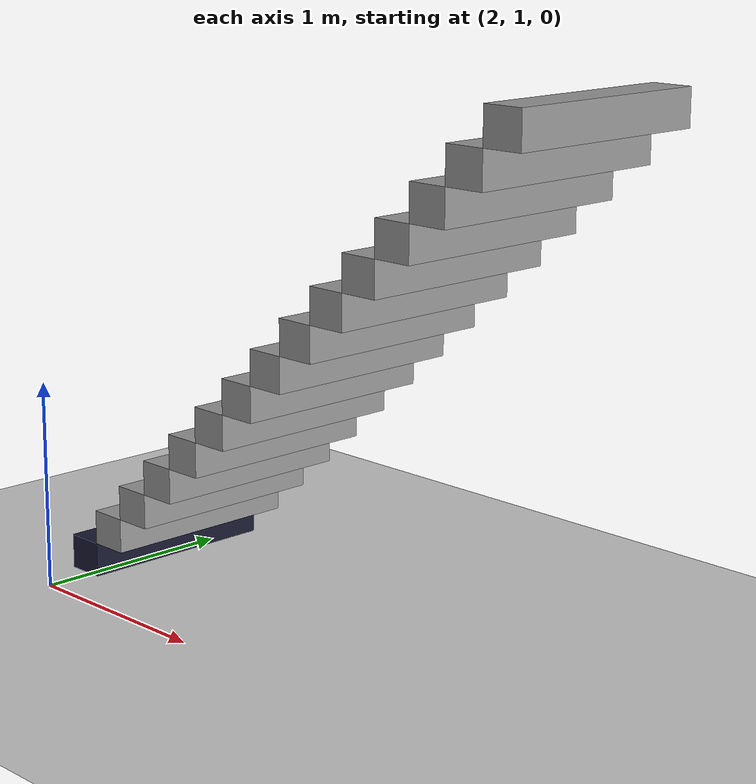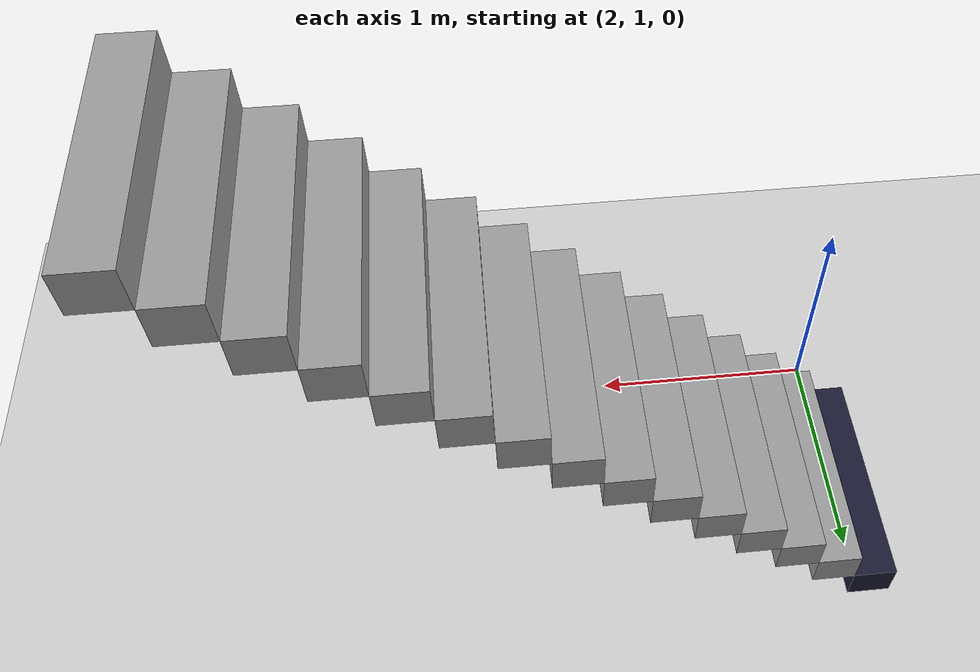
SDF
<sdf version="1.6">
 <world name="default">
  <model name="ground_plane">
   <static>1</static>
   <link name="link">
    <collision name="collision">
     <geometry><plane><normal>0 0 1</normal><size>100 100</size></plane></geometry>
     <surface><friction><ode><mu>100</mu><mu2>50</mu2></ode></friction></surface>
    </collision>
    <visual name="visual">
     <cast_shadows>0</cast_shadows>
     <geometry><plane><normal>0 0 1</normal><size>100 100</size></plane></geometry>
     <material>
      <script><uri>file://media/materials/scripts/gazebo.material</uri><name>Gazebo/Grey</name></script>
     </material>
    </visual>
   </link>
  </model>
  <model name="project1_building">
   <link name="Stairs_7">
    <inertial>
     <mass>1</mass>
     <inertia><ixx>1</ixx><ixy>0</ixy><ixz>0</ixz><iyy>1</iyy><iyz>0</iyz><izz>1</izz></inertia>
    </inertial>
    <visual name="Stairs_7_Visual_0">
     <material>
      <ambient>0.1 0.1 0.1 1</ambient>
      <diffuse>0.1 0.1 0.2 1</diffuse>
      <specular>0 0 0 1</specular>
      <emissive>0 0 0 1</emissive>
      <shader type="pixel"><normal_map>__default__</normal_map></shader>
      <script><name>ModelPreview_1::Stairs_7::Stairs_7_Visual_0_MATERIAL_</name><uri>__default__</uri></script>
     </material>
     <pose>2.81269 2.1369 0.083333 0 -0 1.5708</pose>
     <geometry><box><size>1 0.19 0.166667</size></box></geometry>
     <material>
      <script><uri>file://media/materials/scripts/gazebo.material</uri><name>Gazebo/Grey</name></script>
      <ambient>1 1 1 1</ambient>
     </material>
     <meta><layer>0</layer></meta>
    </visual>
    <visual name="Stairs_7_Visual_1">
     <pose>3.00269 2.1369 0.25 0 -0 1.5708</pose>
     <geometry><box><size>1 0.19 0.166667</size></box></geometry>
     <material>
      <script><uri>file://media/materials/scripts/gazebo.material</uri><name>Gazebo/Grey</name></script>
      <ambient>1 1 1 1</ambient>
      <shader type="pixel"><normal_map>__default__</normal_map></shader>
      <diffuse>0.7 0.7 0.7 1</diffuse>
      <specular>0.01 0.01 0.01 1</specular>
      <emissive>0 0 0 1</emissive>
     </material>
     <meta><layer>0</layer></meta>
    </visual>
    <visual name="Stairs_7_Visual_2">
     <pose>3.19269 2.1369 0.416667 0 -0 1.5708</pose>
     <geometry><box><size>1 0.19 0.166667</size></box></geometry>
     <material>
      <script><uri>file://media/materials/scripts/gazebo.material</uri><name>Gazebo/Grey</name></script>
      <ambient>1 1 1 1</ambient>
      <shader type="pixel"><normal_map>__default__</normal_map></shader>
      <diffuse>0.7 0.7 0.7 1</diffuse>
      <specular>0.01 0.01 0.01 1</specular>
      <emissive>0 0 0 1</emissive>
     </material>
     <meta><layer>0</layer></meta>
    </visual>
    <visual name="Stairs_7_Visual_3">
     <pose>3.38269 2.1369 0.583333 0 -0 1.5708</pose>
     <geometry><box><size>1 0.19 0.166667</size></box></geometry>
     <material>
      <script><uri>file://media/materials/scripts/gazebo.material</uri><name>Gazebo/Grey</name></script>
      <ambient>1 1 1 1</ambient>
      <shader type="pixel"><normal_map>__default__</normal_map></shader>
      <diffuse>0.7 0.7 0.7 1</diffuse>
      <specular>0.01 0.01 0.01 1</specular>
      <emissive>0 0 0 1</emissive>
     </material>
     <meta><layer>0</layer></meta>
    </visual>
    <visual name="Stairs_7_Visual_4">
     <pose>3.57269 2.1369 0.75 0 -0 1.5708</pose>
     <geometry><box><size>1 0.19 0.166667</size></box></geometry>
     <material>
      <script><uri>file://media/materials/scripts/gazebo.material</uri><name>Gazebo/Grey</name></script>
      <ambient>1 1 1 1</ambient>
      <shader type="pixel"><normal_map>__default__</normal_map></shader>
      <diffuse>0.7 0.7 0.7 1</diffuse>
      <specular>0.01 0.01 0.01 1</specular>
      <emissive>0 0 0 1</emissive>
     </material>
     <meta><layer>0</layer></meta>
    </visual>
    <visual name="Stairs_7_Visual_5">
     <pose>3.76269 2.1369 0.916667 0 -0 1.5708</pose>
     <geometry><box><size>1 0.19 0.166667</size></box></geometry>
     <material>
      <script><uri>file://media/materials/scripts/gazebo.material</uri><name>Gazebo/Grey</name></script>
      <ambient>1 1 1 1</ambient>
      <shader type="pixel"><normal_map>__default__</normal_map></shader>
      <diffuse>0.7 0.7 0.7 1</diffuse>
      <specular>0.01 0.01 0.01 1</specular>
      <emissive>0 0 0 1</emissive>
     </material>
     <meta><layer>0</layer></meta>
    </visual>
    <visual name="Stairs_7_Visual_6">
     <pose>3.95269 2.1369 1.08333 0 -0 1.5708</pose>
     <geometry><box><size>1 0.19 0.166667</size></box></geometry>
     <material>
      <script><uri>file://media/materials/scripts/gazebo.material</uri><name>Gazebo/Grey</name></script>
      <ambient>1 1 1 1</ambient>
      <shader type="pixel"><normal_map>__default__</normal_map></shader>
      <diffuse>0.7 0.7 0.7 1</diffuse>
      <specular>0.01 0.01 0.01 1</specular>
      <emissive>0 0 0 1</emissive>
     </material>
     <meta><layer>0</layer></meta>
    </visual>
    <visual name="Stairs_7_Visual_7">
     <pose>4.14269 2.1369 1.25 0 -0 1.5708</pose>
     <geometry><box><size>1 0.19 0.166667</size></box></geometry>
     <material>
      <script><uri>file://media/materials/scripts/gazebo.material</uri><name>Gazebo/Grey</name></script>
      <ambient>1 1 1 1</ambient>
      <shader type="pixel"><normal_map>__default__</normal_map></shader>
      <diffuse>0.7 0.7 0.7 1</diffuse>
      <specular>0.01 0.01 0.01 1</specular>
      <emissive>0 0 0 1</emissive>
     </material>
     <meta><layer>0</layer></meta>
    </visual>
    <visual name="Stairs_7_Visual_8">
     <pose>4.33269 2.1369 1.41667 0 -0 1.5708</pose>
     <geometry><box><size>1 0.19 0.166667</size></box></geometry>
     <material>
      <script><uri>file://media/materials/scripts/gazebo.material</uri><name>Gazebo/Grey</name></script>
      <ambient>1 1 1 1</ambient>
      <shader type="pixel"><normal_map>__default__</normal_map></shader>
      <diffuse>0.7 0.7 0.7 1</diffuse>
      <specular>0.01 0.01 0.01 1</specular>
      <emissive>0 0 0 1</emissive>
     </material>
     <meta><layer>0</layer></meta>
    </visual>
    <visual name="Stairs_7_Visual_9">
     <pose>4.52269 2.1369 1.58333 0 -0 1.5708</pose>
     <geometry><box><size>1 0.19 0.166667</size></box></geometry>
     <material>
      <script><uri>file://media/materials/scripts/gazebo.material</uri><name>Gazebo/Grey</name></script>
      <ambient>1 1 1 1</ambient>
      <shader type="pixel"><normal_map>__default__</normal_map></shader>
      <diffuse>0.7 0.7 0.7 1</diffuse>
      <specular>0.01 0.01 0.01 1</specular>
      <emissive>0 0 0 1</emissive>
     </material>
     <meta><layer>0</layer></meta>
    </visual>
    <visual name="Stairs_7_Visual_10">
     <pose>4.71269 2.1369 1.75 0 -0 1.5708</pose>
     <geometry><box><size>1 0.19 0.166667</size></box></geometry>
     <material>
      <script><uri>file://media/materials/scripts/gazebo.material</uri><name>Gazebo/Grey</name></script>
      <ambient>1 1 1 1</ambient>
      <shader type="pixel"><normal_map>__default__</normal_map></shader>
      <diffuse>0.7 0.7 0.7 1</diffuse>
      <specular>0.01 0.01 0.01 1</specular>
      <emissive>0 0 0 1</emissive>
     </material>
     <meta><layer>0</layer></meta>
    </visual>
    <visual name="Stairs_7_Visual_11">
     <pose>4.90269 2.1369 1.91667 0 -0 1.5708</pose>
     <geometry><box><size>1 0.19 0.166667</size></box></geometry>
     <material>
      <script><uri>file://media/materials/scripts/gazebo.material</uri><name>Gazebo/Grey</name></script>
      <ambient>1 1 1 1</ambient>
      <shader type="pixel"><normal_map>__default__</normal_map></shader>
      <diffuse>0.7 0.7 0.7 1</diffuse>
      <specular>0.01 0.01 0.01 1</specular>
      <emissive>0 0 0 1</emissive>
     </material>
     <meta><layer>0</layer></meta>
    </visual>
    <visual name="Stairs_7_Visual_12">
     <pose>5.09269 2.1369 2.08333 0 -0 1.5708</pose>
     <geometry><box><size>1 0.19 0.166667</size></box></geometry>
     <material>
      <script><uri>file://media/materials/scripts/gazebo.material</uri><name>Gazebo/Grey</name></script>
      <ambient>1 1 1 1</ambient>
      <shader type="pixel"><normal_map>__default__</normal_map></shader>
      <diffuse>0.7 0.7 0.7 1</diffuse>
      <specular>0.01 0.01 0.01 1</specular>
      <emissive>0 0 0 1</emissive>
     </material>
     <meta><layer>0</layer></meta>
    </visual>
    <visual name="Stairs_7_Visual_13">
     <pose>5.28269 2.1369 2.25 0 -0 1.5708</pose>
     <geometry><box><size>1 0.19 0.166667</size></box></geometry>
     <material>
      <script><uri>file://media/materials/scripts/gazebo.material</uri><name>Gazebo/Grey</name></script>
      <ambient>1 1 1 1</ambient>
      <shader type="pixel"><normal_map>__default__</normal_map></shader>
      <diffuse>0.7 0.7 0.7 1</diffuse>
      <specular>0.01 0.01 0.01 1</specular>
      <emissive>0 0 0 1</emissive>
     </material>
     <meta><layer>0</layer></meta>
    </visual>
    <visual name="Stairs_7_Visual_14">
     <pose>5.47269 2.1369 2.41667 0 -0 1.5708</pose>
     <geometry><box><size>1 0.19 0.166667</size></box></geometry>
     <material>
      <script><uri>file://media/materials/scripts/gazebo.material</uri><name>Gazebo/Grey</name></script>
      <ambient>1 1 1 1</ambient>
      <shader type="pixel"><normal_map>__default__</normal_map></shader>
      <diffuse>0.7 0.7 0.7 1</diffuse>
      <specular>0.01 0.01 0.01 1</specular>
      <emissive>0 0 0 1</emissive>
     </material>
     <meta><layer>0</layer></meta>
    </visual>
    <collision name="Stairs_7_Collision_0">
     <pose>2.81269 2.1369 0.083333 0 -0 1.5708</pose>
     <geometry><box><size>1 0.19 0.166667</size></box></geometry>
     <surface>
      <friction>
       <ode><mu>1</mu><mu2>1</mu2><fdir1>0 0 0</fdir1><slip1>0</slip1><slip2>0</slip2></ode>
       <torsional>
        <coefficient>1</coefficient>
        <patch_radius>0</patch_radius>
        <surface_radius>0</surface_radius>
        <use_patch_radius>1</use_patch_radius>
        <ode><slip>0</slip></ode>
       </torsional>
      </friction>
      <bounce><restitution_coefficient>0</restitution_coefficient><threshold>1e+06</threshold></bounce>
      <contact>
       <collide_without_contact>0</collide_without_contact>
       <collide_without_contact_bitmask>1</collide_without_contact_bitmask>
       <collide_bitmask>1</collide_bitmask>
       <ode>
        <soft_cfm>0</soft_cfm>
        <soft_erp>0.2</soft_erp>
        <kp>1e+13</kp>
        <kd>1</kd>
        <max_vel>0.01</max_vel>
        <min_depth>0</min_depth>
       </ode>
       <bullet>
        <split_impulse>1</split_impulse>
        <split_impulse_penetration_threshold>-0.01</split_impulse_penetration_threshold>
        <soft_cfm>0</soft_cfm>
        <soft_erp>0.2</soft_erp>
        <kp>1e+13</kp>
        <kd>1</kd>
       </bullet>
      </contact>
     </surface>
    </collision>
    <collision name="Stairs_7_Collision_1">
     <pose>3.00269 2.1369 0.25 0 -0 1.5708</pose>
     <geometry><box><size>1 0.19 0.166667</size></box></geometry>
     <surface>
      <friction>
       <ode><mu>1</mu><mu2>1</mu2><fdir1>0 0 0</fdir1><slip1>0</slip1><slip2>0</slip2></ode>
       <torsional>
        <coefficient>1</coefficient>
        <patch_radius>0</patch_radius>
        <surface_radius>0</surface_radius>
        <use_patch_radius>1</use_patch_radius>
        <ode><slip>0</slip></ode>
       </torsional>
      </friction>
      <bounce><restitution_coefficient>0</restitution_coefficient><threshold>1e+06</threshold></bounce>
      <contact>
       <collide_without_contact>0</collide_without_contact>
       <collide_without_contact_bitmask>1</collide_without_contact_bitmask>
       <collide_bitmask>1</collide_bitmask>
       <ode>
        <soft_cfm>0</soft_cfm>
        <soft_erp>0.2</soft_erp>
        <kp>1e+13</kp>
        <kd>1</kd>
        <max_vel>0.01</max_vel>
        <min_depth>0</min_depth>
       </ode>
       <bullet>
        <split_impulse>1</split_impulse>
        <split_impulse_penetration_threshold>-0.01</split_impulse_penetration_threshold>
        <soft_cfm>0</soft_cfm>
        <soft_erp>0.2</soft_erp>
        <kp>1e+13</kp>
        <kd>1</kd>
       </bullet>
      </contact>
     </surface>
    </collision>
    <collision name="Stairs_7_Collision_2">
     <pose>3.19269 2.1369 0.416667 0 -0 1.5708</pose>
     <geometry><box><size>1 0.19 0.166667</size></box></geometry>
     <surface>
      <friction>
       <ode><mu>1</mu><mu2>1</mu2><fdir1>0 0 0</fdir1><slip1>0</slip1><slip2>0</slip2></ode>
       <torsional>
        <coefficient>1</coefficient>
        <patch_radius>0</patch_radius>
        <surface_radius>0</surface_radius>
        <use_patch_radius>1</use_patch_radius>
        <ode><slip>0</slip></ode>
       </torsional>
      </friction>
      <bounce><restitution_coefficient>0</restitution_coefficient><threshold>1e+06</threshold></bounce>
      <contact>
       <collide_without_contact>0</collide_without_contact>
       <collide_without_contact_bitmask>1</collide_without_contact_bitmask>
       <collide_bitmask>1</collide_bitmask>
       <ode>
        <soft_cfm>0</soft_cfm>
        <soft_erp>0.2</soft_erp>
        <kp>1e+13</kp>
        <kd>1</kd>
        <max_vel>0.01</max_vel>
        <min_depth>0</min_depth>
       </ode>
       <bullet>
        <split_impulse>1</split_impulse>
        <split_impulse_penetration_threshold>-0.01</split_impulse_penetration_threshold>
        <soft_cfm>0</soft_cfm>
        <soft_erp>0.2</soft_erp>
        <kp>1e+13</kp>
        <kd>1</kd>
       </bullet>
      </contact>
     </surface>
    </collision>
    <collision name="Stairs_7_Collision_3">
     <pose>3.38269 2.1369 0.583333 0 -0 1.5708</pose>
     <geometry><box><size>1 0.19 0.166667</size></box></geometry>
     <surface>
      <friction>
       <ode><mu>1</mu><mu2>1</mu2><fdir1>0 0 0</fdir1><slip1>0</slip1><slip2>0</slip2></ode>
       <torsional>
        <coefficient>1</coefficient>
        <patch_radius>0</patch_radius>
        <surface_radius>0</surface_radius>
        <use_patch_radius>1</use_patch_radius>
        <ode><slip>0</slip></ode>
       </torsional>
      </friction>
      <bounce><restitution_coefficient>0</restitution_coefficient><threshold>1e+06</threshold></bounce>
      <contact>
       <collide_without_contact>0</collide_without_contact>
       <collide_without_contact_bitmask>1</collide_without_contact_bitmask>
       <collide_bitmask>1</collide_bitmask>
       <ode>
        <soft_cfm>0</soft_cfm>
        <soft_erp>0.2</soft_erp>
        <kp>1e+13</kp>
        <kd>1</kd>
        <max_vel>0.01</max_vel>
        <min_depth>0</min_depth>
       </ode>
       <bullet>
        <split_impulse>1</split_impulse>
        <split_impulse_penetration_threshold>-0.01</split_impulse_penetration_threshold>
        <soft_cfm>0</soft_cfm>
        <soft_erp>0.2</soft_erp>
        <kp>1e+13</kp>
        <kd>1</kd>
       </bullet>
      </contact>
     </surface>
    </collision>
    <collision name="Stairs_7_Collision_4">
     <pose>3.57269 2.1369 0.75 0 -0 1.5708</pose>
     <geometry><box><size>1 0.19 0.166667</size></box></geometry>
     <surface>
      <friction>
       <ode><mu>1</mu><mu2>1</mu2><fdir1>0 0 0</fdir1><slip1>0</slip1><slip2>0</slip2></ode>
       <torsional>
        <coefficient>1</coefficient>
        <patch_radius>0</patch_radius>
        <surface_radius>0</surface_radius>
        <use_patch_radius>1</use_patch_radius>
        <ode><slip>0</slip></ode>
       </torsional>
      </friction>
      <bounce><restitution_coefficient>0</restitution_coefficient><threshold>1e+06</threshold></bounce>
      <contact>
       <collide_without_contact>0</collide_without_contact>
       <collide_without_contact_bitmask>1</collide_without_contact_bitmask>
       <collide_bitmask>1</collide_bitmask>
       <ode>
        <soft_cfm>0</soft_cfm>
        <soft_erp>0.2</soft_erp>
        <kp>1e+13</kp>
        <kd>1</kd>
        <max_vel>0.01</max_vel>
        <min_depth>0</min_depth>
       </ode>
       <bullet>
        <split_impulse>1</split_impulse>
        <split_impulse_penetration_threshold>-0.01</split_impulse_penetration_threshold>
        <soft_cfm>0</soft_cfm>
        <soft_erp>0.2</soft_erp>
        <kp>1e+13</kp>
        <kd>1</kd>
       </bullet>
      </contact>
     </surface>
    </collision>
    <collision name="Stairs_7_Collision_5">
     <pose>3.76269 2.1369 0.916667 0 -0 1.5708</pose>
     <geometry><box><size>1 0.19 0.166667</size></box></geometry>
     <surface>
      <friction>
       <ode><mu>1</mu><mu2>1</mu2><fdir1>0 0 0</fdir1><slip1>0</slip1><slip2>0</slip2></ode>
       <torsional>
        <coefficient>1</coefficient>
        <patch_radius>0</patch_radius>
        <surface_radius>0</surface_radius>
        <use_patch_radius>1</use_patch_radius>
        <ode><slip>0</slip></ode>
       </torsional>
      </friction>
      <bounce><restitution_coefficient>0</restitution_coefficient><threshold>1e+06</threshold></bounce>
      <contact>
       <collide_without_contact>0</collide_without_contact>
       <collide_without_contact_bitmask>1</collide_without_contact_bitmask>
       <collide_bitmask>1</collide_bitmask>
       <ode>
        <soft_cfm>0</soft_cfm>
        <soft_erp>0.2</soft_erp>
        <kp>1e+13</kp>
        <kd>1</kd>
        <max_vel>0.01</max_vel>
        <min_depth>0</min_depth>
       </ode>
       <bullet>
        <split_impulse>1</split_impulse>
        <split_impulse_penetration_threshold>-0.01</split_impulse_penetration_threshold>
        <soft_cfm>0</soft_cfm>
        <soft_erp>0.2</soft_erp>
        <kp>1e+13</kp>
        <kd>1</kd>
       </bullet>
      </contact>
     </surface>
    </collision>
    <collision name="Stairs_7_Collision_6">
     <pose>3.95269 2.1369 1.08333 0 -0 1.5708</pose>
     <geometry><box><size>1 0.19 0.166667</size></box></geometry>
     <surface>
      <friction>
       <ode><mu>1</mu><mu2>1</mu2><fdir1>0 0 0</fdir1><slip1>0</slip1><slip2>0</slip2></ode>
       <torsional>
        <coefficient>1</coefficient>
        <patch_radius>0</patch_radius>
        <surface_radius>0</surface_radius>
        <use_patch_radius>1</use_patch_radius>
        <ode><slip>0</slip></ode>
       </torsional>
      </friction>
      <bounce><restitution_coefficient>0</restitution_coefficient><threshold>1e+06</threshold></bounce>
      <contact>
       <collide_without_contact>0</collide_without_contact>
       <collide_without_contact_bitmask>1</collide_without_contact_bitmask>
       <collide_bitmask>1</collide_bitmask>
       <ode>
        <soft_cfm>0</soft_cfm>
        <soft_erp>0.2</soft_erp>
        <kp>1e+13</kp>
        <kd>1</kd>
        <max_vel>0.01</max_vel>
        <min_depth>0</min_depth>
       </ode>
       <bullet>
        <split_impulse>1</split_impulse>
        <split_impulse_penetration_threshold>-0.01</split_impulse_penetration_threshold>
        <soft_cfm>0</soft_cfm>
        <soft_erp>0.2</soft_erp>
        <kp>1e+13</kp>
        <kd>1</kd>
       </bullet>
      </contact>
     </surface>
    </collision>
    <collision name="Stairs_7_Collision_7">
     <pose>4.14269 2.1369 1.25 0 -0 1.5708</pose>
     <geometry><box><size>1 0.19 0.166667</size></box></geometry>
     <surface>
      <friction>
       <ode><mu>1</mu><mu2>1</mu2><fdir1>0 0 0</fdir1><slip1>0</slip1><slip2>0</slip2></ode>
       <torsional>
        <coefficient>1</coefficient>
        <patch_radius>0</patch_radius>
        <surface_radius>0</surface_radius>
        <use_patch_radius>1</use_patch_radius>
        <ode><slip>0</slip></ode>
       </torsional>
      </friction>
      <bounce><restitution_coefficient>0</restitution_coefficient><threshold>1e+06</threshold></bounce>
      <contact>
       <collide_without_contact>0</collide_without_contact>
       <collide_without_contact_bitmask>1</collide_without_contact_bitmask>
       <collide_bitmask>1</collide_bitmask>
       <ode>
        <soft_cfm>0</soft_cfm>
        <soft_erp>0.2</soft_erp>
        <kp>1e+13</kp>
        <kd>1</kd>
        <max_vel>0.01</max_vel>
        <min_depth>0</min_depth>
       </ode>
       <bullet>
        <split_impulse>1</split_impulse>
        <split_impulse_penetration_threshold>-0.01</split_impulse_penetration_threshold>
        <soft_cfm>0</soft_cfm>
        <soft_erp>0.2</soft_erp>
        <kp>1e+13</kp>
        <kd>1</kd>
       </bullet>
      </contact>
     </surface>
    </collision>
    <collision name="Stairs_7_Collision_8">
     <pose>4.33269 2.1369 1.41667 0 -0 1.5708</pose>
     <geometry><box><size>1 0.19 0.166667</size></box></geometry>
     <surface>
      <friction>
       <ode><mu>1</mu><mu2>1</mu2><fdir1>0 0 0</fdir1><slip1>0</slip1><slip2>0</slip2></ode>
       <torsional>
        <coefficient>1</coefficient>
        <patch_radius>0</patch_radius>
        <surface_radius>0</surface_radius>
        <use_patch_radius>1</use_patch_radius>
        <ode><slip>0</slip></ode>
       </torsional>
      </friction>
      <bounce><restitution_coefficient>0</restitution_coefficient><threshold>1e+06</threshold></bounce>
      <contact>
       <collide_without_contact>0</collide_without_contact>
       <collide_without_contact_bitmask>1</collide_without_contact_bitmask>
       <collide_bitmask>1</collide_bitmask>
       <ode>
        <soft_cfm>0</soft_cfm>
        <soft_erp>0.2</soft_erp>
        <kp>1e+13</kp>
        <kd>1</kd>
        <max_vel>0.01</max_vel>
        <min_depth>0</min_depth>
       </ode>
       <bullet>
        <split_impulse>1</split_impulse>
        <split_impulse_penetration_threshold>-0.01</split_impulse_penetration_threshold>
        <soft_cfm>0</soft_cfm>
        <soft_erp>0.2</soft_erp>
        <kp>1e+13</kp>
        <kd>1</kd>
       </bullet>
      </contact>
     </surface>
    </collision>
    <collision name="Stairs_7_Collision_9">
     <pose>4.52269 2.1369 1.58333 0 -0 1.5708</pose>
     <geometry><box><size>1 0.19 0.166667</size></box></geometry>
     <surface>
      <friction>
       <ode><mu>1</mu><mu2>1</mu2><fdir1>0 0 0</fdir1><slip1>0</slip1><slip2>0</slip2></ode>
       <torsional>
        <coefficient>1</coefficient>
        <patch_radius>0</patch_radius>
        <surface_radius>0</surface_radius>
        <use_patch_radius>1</use_patch_radius>
        <ode><slip>0</slip></ode>
       </torsional>
      </friction>
      <bounce><restitution_coefficient>0</restitution_coefficient><threshold>1e+06</threshold></bounce>
      <contact>
       <collide_without_contact>0</collide_without_contact>
       <collide_without_contact_bitmask>1</collide_without_contact_bitmask>
       <collide_bitmask>1</collide_bitmask>
       <ode>
        <soft_cfm>0</soft_cfm>
        <soft_erp>0.2</soft_erp>
        <kp>1e+13</kp>
        <kd>1</kd>
        <max_vel>0.01</max_vel>
        <min_depth>0</min_depth>
       </ode>
       <bullet>
        <split_impulse>1</split_impulse>
        <split_impulse_penetration_threshold>-0.01</split_impulse_penetration_threshold>
        <soft_cfm>0</soft_cfm>
        <soft_erp>0.2</soft_erp>
        <kp>1e+13</kp>
        <kd>1</kd>
       </bullet>
      </contact>
     </surface>
    </collision>
    <collision name="Stairs_7_Collision_10">
     <pose>4.71269 2.1369 1.75 0 -0 1.5708</pose>
     <geometry><box><size>1 0.19 0.166667</size></box></geometry>
     <surface>
      <friction>
       <ode><mu>1</mu><mu2>1</mu2><fdir1>0 0 0</fdir1><slip1>0</slip1><slip2>0</slip2></ode>
       <torsional>
        <coefficient>1</coefficient>
        <patch_radius>0</patch_radius>
        <surface_radius>0</surface_radius>
        <use_patch_radius>1</use_patch_radius>
        <ode><slip>0</slip></ode>
       </torsional>
      </friction>
      <bounce><restitution_coefficient>0</restitution_coefficient><threshold>1e+06</threshold></bounce>
      <contact>
       <collide_without_contact>0</collide_without_contact>
       <collide_without_contact_bitmask>1</collide_without_contact_bitmask>
       <collide_bitmask>1</collide_bitmask>
       <ode>
        <soft_cfm>0</soft_cfm>
        <soft_erp>0.2</soft_erp>
        <kp>1e+13</kp>
        <kd>1</kd>
        <max_vel>0.01</max_vel>
        <min_depth>0</min_depth>
       </ode>
       <bullet>
        <split_impulse>1</split_impulse>
        <split_impulse_penetration_threshold>-0.01</split_impulse_penetration_threshold>
        <soft_cfm>0</soft_cfm>
        <soft_erp>0.2</soft_erp>
        <kp>1e+13</kp>
        <kd>1</kd>
       </bullet>
      </contact>
     </surface>
    </collision>
    <collision name="Stairs_7_Collision_11">
     <pose>4.90269 2.1369 1.91667 0 -0 1.5708</pose>
     <geometry><box><size>1 0.19 0.166667</size></box></geometry>
     <surface>
      <friction>
       <ode><mu>1</mu><mu2>1</mu2><fdir1>0 0 0</fdir1><slip1>0</slip1><slip2>0</slip2></ode>
       <torsional>
        <coefficient>1</coefficient>
        <patch_radius>0</patch_radius>
        <surface_radius>0</surface_radius>
        <use_patch_radius>1</use_patch_radius>
        <ode><slip>0</slip></ode>
       </torsional>
      </friction>
      <bounce><restitution_coefficient>0</restitution_coefficient><threshold>1e+06</threshold></bounce>
      <contact>
       <collide_without_contact>0</collide_without_contact>
       <collide_without_contact_bitmask>1</collide_without_contact_bitmask>
       <collide_bitmask>1</collide_bitmask>
       <ode>
        <soft_cfm>0</soft_cfm>
        <soft_erp>0.2</soft_erp>
        <kp>1e+13</kp>
        <kd>1</kd>
        <max_vel>0.01</max_vel>
        <min_depth>0</min_depth>
       </ode>
       <bullet>
        <split_impulse>1</split_impulse>
        <split_impulse_penetration_threshold>-0.01</split_impulse_penetration_threshold>
        <soft_cfm>0</soft_cfm>
        <soft_erp>0.2</soft_erp>
        <kp>1e+13</kp>
        <kd>1</kd>
       </bullet>
      </contact>
     </surface>
    </collision>
    <collision name="Stairs_7_Collision_13">
     <pose>5.28269 2.1369 2.25 0 -0 1.5708</pose>
     <geometry><box><size>1 0.19 0.166667</size></box></geometry>
     <surface>
      <friction>
       <ode><mu>1</mu><mu2>1</mu2><fdir1>0 0 0</fdir1><slip1>0</slip1><slip2>0</slip2></ode>
       <torsional>
        <coefficient>1</coefficient>
        <patch_radius>0</patch_radius>
        <surface_radius>0</surface_radius>
        <use_patch_radius>1</use_patch_radius>
        <ode><slip>0</slip></ode>
       </torsional>
      </friction>
      <bounce><restitution_coefficient>0</restitution_coefficient><threshold>1e+06</threshold></bounce>
      <contact>
       <collide_without_contact>0</collide_without_contact>
       <collide_without_contact_bitmask>1</collide_without_contact_bitmask>
       <collide_bitmask>1</collide_bitmask>
       <ode>
        <soft_cfm>0</soft_cfm>
        <soft_erp>0.2</soft_erp>
        <kp>1e+13</kp>
        <kd>1</kd>
        <max_vel>0.01</max_vel>
        <min_depth>0</min_depth>
       </ode>
       <bullet>
        <split_impulse>1</split_impulse>
        <split_impulse_penetration_threshold>-0.01</split_impulse_penetration_threshold>
        <soft_cfm>0</soft_cfm>
        <soft_erp>0.2</soft_erp>
        <kp>1e+13</kp>
        <kd>1</kd>
       </bullet>
      </contact>
     </surface>
    </collision>
    <collision name="Stairs_7_Collision_12">
     <pose>5.09269 2.1369 2.08333 0 -0 1.5708</pose>
     <geometry><box><size>1 0.19 0.166667</size></box></geometry>
     <surface>
      <friction>
       <ode><mu>1</mu><mu2>1</mu2><fdir1>0 0 0</fdir1><slip1>0</slip1><slip2>0</slip2></ode>
       <torsional>
        <coefficient>1</coefficient>
        <patch_radius>0</patch_radius>
        <surface_radius>0</surface_radius>
        <use_patch_radius>1</use_patch_radius>
        <ode><slip>0</slip></ode>
       </torsional>
      </friction>
      <bounce><restitution_coefficient>0</restitution_coefficient><threshold>1e+06</threshold></bounce>
      <contact>
       <collide_without_contact>0</collide_without_contact>
       <collide_without_contact_bitmask>1</collide_without_contact_bitmask>
       <collide_bitmask>1</collide_bitmask>
       <ode>
        <soft_cfm>0</soft_cfm>
        <soft_erp>0.2</soft_erp>
        <kp>1e+13</kp>
        <kd>1</kd>
        <max_vel>0.01</max_vel>
        <min_depth>0</min_depth>
       </ode>
       <bullet>
        <split_impulse>1</split_impulse>
        <split_impulse_penetration_threshold>-0.01</split_impulse_penetration_threshold>
        <soft_cfm>0</soft_cfm>
        <soft_erp>0.2</soft_erp>
        <kp>1e+13</kp>
        <kd>1</kd>
       </bullet>
      </contact>
     </surface>
    </collision>
    <collision name="Stairs_7_Collision_14">
     <pose>5.47269 2.1369 2.41667 0 -0 1.5708</pose>
     <geometry><box><size>1 0.19 0.166667</size></box></geometry>
     <surface>
      <friction>
       <ode><mu>1</mu><mu2>1</mu2><fdir1>0 0 0</fdir1><slip1>0</slip1><slip2>0</slip2></ode>
       <torsional>
        <coefficient>1</coefficient>
        <patch_radius>0</patch_radius>
        <surface_radius>0</surface_radius>
        <use_patch_radius>1</use_patch_radius>
        <ode><slip>0</slip></ode>
       </torsional>
      </friction>
      <bounce><restitution_coefficient>0</restitution_coefficient><threshold>1e+06</threshold></bounce>
      <contact>
       <collide_without_contact>0</collide_without_contact>
       <collide_without_contact_bitmask>1</collide_without_contact_bitmask>
       <collide_bitmask>1</collide_bitmask>
       <ode>
        <soft_cfm>0</soft_cfm>
        <soft_erp>0.2</soft_erp>
        <kp>1e+13</kp>
        <kd>1</kd>
        <max_vel>0.01</max_vel>
        <min_depth>0</min_depth>
       </ode>
       <bullet>
        <split_impulse>1</split_impulse>
        <split_impulse_penetration_threshold>-0.01</split_impulse_penetration_threshold>
        <soft_cfm>0</soft_cfm>
        <soft_erp>0.2</soft_erp>
        <kp>1e+13</kp>
        <kd>1</kd>
       </bullet>
      </contact>
     </surface>
    </collision>
   </link>
   <static>1</static>
   <pose>-0.860177 -0.394811 0 0 -0 0</pose>
  </model>
 </world>
</sdf>
